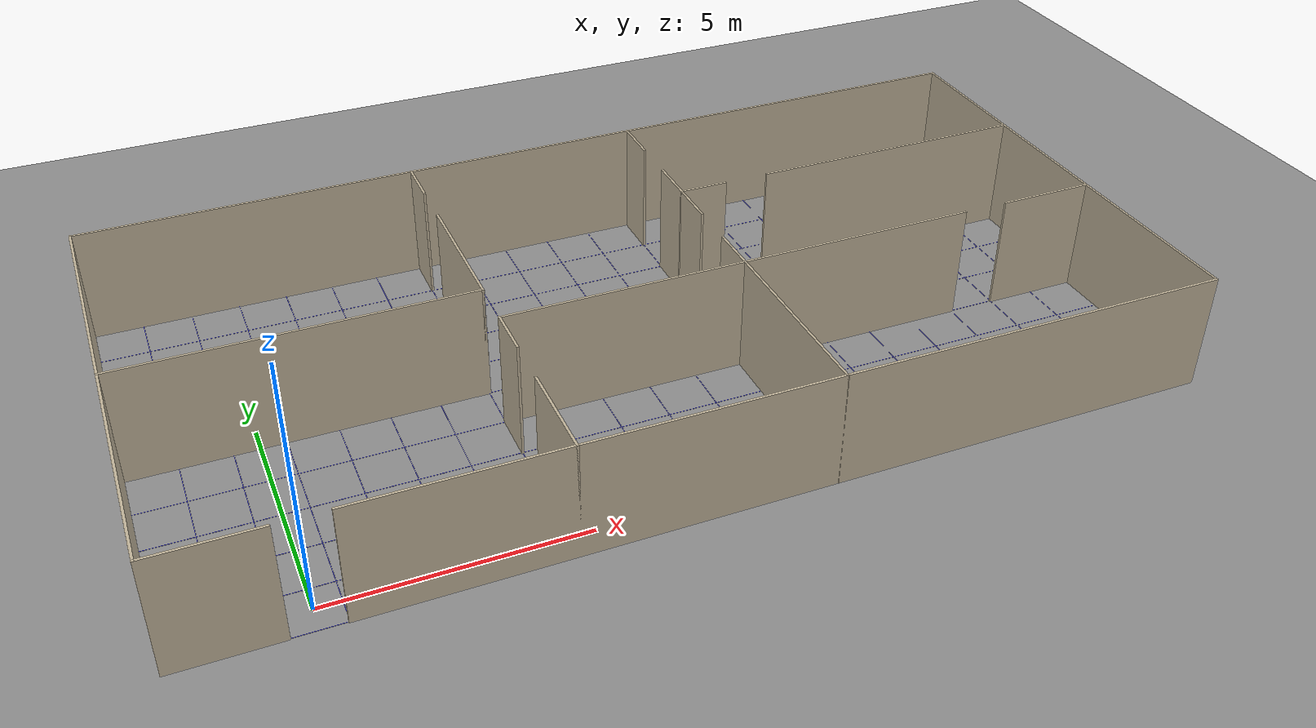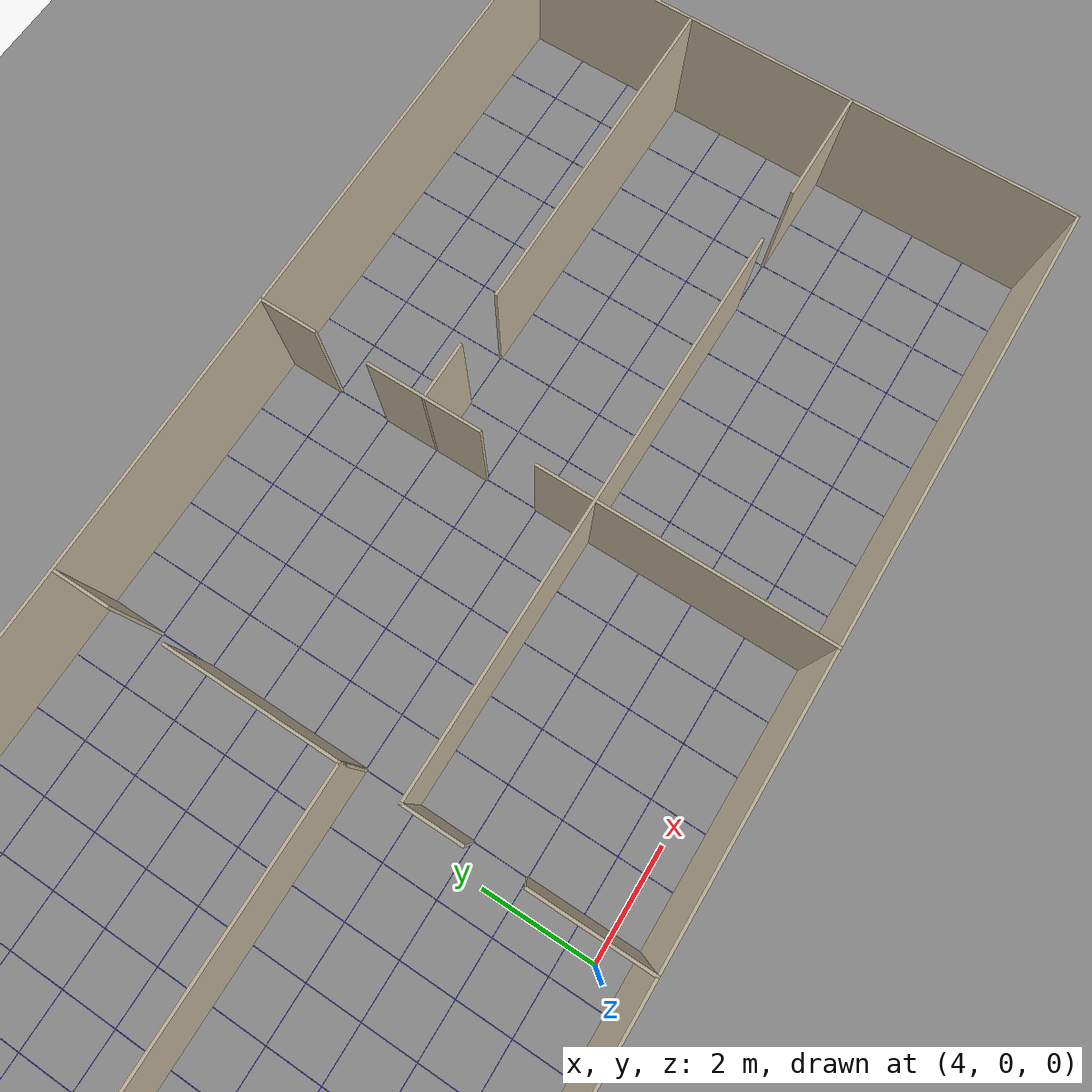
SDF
<sdf version="1.9">
 <world name="rooms_small_5">
  <physics name="1ms" type="ignore">
   <max_step_size>0.001</max_step_size>
   <real_time_factor>1.0</real_time_factor>
  </physics>
  <plugin filename="gz-sim-physics-system" name="gz::sim::systems::Physics"/>
  <plugin filename="gz-sim-sensors-system" name="gz::sim::systems::Sensors">
   <render_engine>ogre2</render_engine>
  </plugin>
  <plugin filename="gz-sim-user-commands-system" name="gz::sim::systems::UserCommands"/>
  <plugin filename="gz-sim-scene-broadcaster-system" name="gz::sim::systems::SceneBroadcaster"/>
  <plugin filename="gz-sim-imu-system" name="gz::sim::systems::Imu"/>
  <plugin filename="gz-sim-navsat-system" name="gz::sim::systems::NavSat"/>
  <scene><ambient>0.8 0.8 0.8</ambient><background>0.8 0.8 0.8</background></scene>
  <spherical_coordinates>
   <latitude_deg>-35.363262</latitude_deg>
   <longitude_deg>149.165237</longitude_deg>
   <elevation>584</elevation>
   <heading_deg>0</heading_deg>
   <surface_model>EARTH_WGS84</surface_model>
  </spherical_coordinates>
  <light type="directional" name="sun">
   <cast_shadows>false</cast_shadows>
   <pose>0 0 10 0 0 0</pose>
   <diffuse>0.9 0.9 0.9 1</diffuse>
   <direction>-0.3 0.2 -0.9</direction>
  </light>
  <model name="ground">
   <static>true</static>
   <link name="link">
    <collision name="c"><geometry><plane><normal>0 0 1</normal><size>60 60</size></plane></geometry></collision>
    <visual name="v">
     <geometry><plane><normal>0 0 1</normal><size>60 60</size></plane></geometry>
     <material><ambient>0.55 0.55 0.55 1</ambient><diffuse>0.55 0.55 0.55 1</diffuse></material>
    </visual>
   </link>
  </model>
  <model name="maze">
   <static>true</static>
   <link name="h0_0">
    <pose>7.500 9.500 1.220 0 0 0</pose>
    <collision name="c"><geometry><box><size>20.05 0.05 2.44</size></box></geometry></collision>
    <visual name="v">
     <geometry><box><size>20.05 0.05 2.44</size></box></geometry>
     <material><ambient>0.75 0.7 0.6 1</ambient><diffuse>0.75 0.7 0.6 1</diffuse></material>
    </visual>
   </link>
   <link name="h3_12">
    <pose>10.000 6.500 1.220 0 0 0</pose>
    <collision name="c"><geometry><box><size>1.05 0.05 2.44</size></box></geometry></collision>
    <visual name="v">
     <geometry><box><size>1.05 0.05 2.44</size></box></geometry>
     <material><ambient>0.75 0.7 0.6 1</ambient><diffuse>0.75 0.7 0.6 1</diffuse></material>
    </visual>
   </link>
   <link name="h3_14">
    <pose>14.500 6.500 1.220 0 0 0</pose>
    <collision name="c"><geometry><box><size>6.05 0.05 2.44</size></box></geometry></collision>
    <visual name="v">
     <geometry><box><size>6.05 0.05 2.44</size></box></geometry>
     <material><ambient>0.75 0.7 0.6 1</ambient><diffuse>0.75 0.7 0.6 1</diffuse></material>
    </visual>
   </link>
   <link name="h5_0">
    <pose>1.000 4.500 1.220 0 0 0</pose>
    <collision name="c"><geometry><box><size>7.05 0.05 2.44</size></box></geometry></collision>
    <visual name="v">
     <geometry><box><size>7.05 0.05 2.44</size></box></geometry>
     <material><ambient>0.75 0.7 0.6 1</ambient><diffuse>0.75 0.7 0.6 1</diffuse></material>
    </visual>
   </link>
   <link name="h6_7">
    <pose>9.500 3.500 1.220 0 0 0</pose>
    <collision name="c"><geometry><box><size>10.05 0.05 2.44</size></box></geometry></collision>
    <visual name="v">
     <geometry><box><size>10.05 0.05 2.44</size></box></geometry>
     <material><ambient>0.75 0.7 0.6 1</ambient><diffuse>0.75 0.7 0.6 1</diffuse></material>
    </visual>
   </link>
   <link name="h6_18">
    <pose>16.500 3.500 1.220 0 0 0</pose>
    <collision name="c"><geometry><box><size>2.05 0.05 2.44</size></box></geometry></collision>
    <visual name="v">
     <geometry><box><size>2.05 0.05 2.44</size></box></geometry>
     <material><ambient>0.75 0.7 0.6 1</ambient><diffuse>0.75 0.7 0.6 1</diffuse></material>
    </visual>
   </link>
   <link name="h10_0">
    <pose>-1.500 -0.500 1.220 0 0 0</pose>
    <collision name="c"><geometry><box><size>2.05 0.05 2.44</size></box></geometry></collision>
    <visual name="v">
     <geometry><box><size>2.05 0.05 2.44</size></box></geometry>
     <material><ambient>0.75 0.7 0.6 1</ambient><diffuse>0.75 0.7 0.6 1</diffuse></material>
    </visual>
   </link>
   <link name="h10_3">
    <pose>9.000 -0.500 1.220 0 0 0</pose>
    <collision name="c"><geometry><box><size>17.05 0.05 2.44</size></box></geometry></collision>
    <visual name="v">
     <geometry><box><size>17.05 0.05 2.44</size></box></geometry>
     <material><ambient>0.75 0.7 0.6 1</ambient><diffuse>0.75 0.7 0.6 1</diffuse></material>
    </visual>
   </link>
   <link name="v0_0">
    <pose>-2.500 4.500 1.220 0 0 0</pose>
    <collision name="c"><geometry><box><size>0.05 10.05 2.44</size></box></geometry></collision>
    <visual name="v">
     <geometry><box><size>0.05 10.05 2.44</size></box></geometry>
     <material><ambient>0.75 0.7 0.6 1</ambient><diffuse>0.75 0.7 0.6 1</diffuse></material>
    </visual>
   </link>
   <link name="v7_0">
    <pose>4.500 9.000 1.220 0 0 0</pose>
    <collision name="c"><geometry><box><size>0.05 1.05 2.44</size></box></geometry></collision>
    <visual name="v">
     <geometry><box><size>0.05 1.05 2.44</size></box></geometry>
     <material><ambient>0.75 0.7 0.6 1</ambient><diffuse>0.75 0.7 0.6 1</diffuse></material>
    </visual>
   </link>
   <link name="v7_2">
    <pose>4.500 6.000 1.220 0 0 0</pose>
    <collision name="c"><geometry><box><size>0.05 3.05 2.44</size></box></geometry></collision>
    <visual name="v">
     <geometry><box><size>0.05 3.05 2.44</size></box></geometry>
     <material><ambient>0.75 0.7 0.6 1</ambient><diffuse>0.75 0.7 0.6 1</diffuse></material>
    </visual>
   </link>
   <link name="v7_6">
    <pose>4.500 3.000 1.220 0 0 0</pose>
    <collision name="c"><geometry><box><size>0.05 1.05 2.44</size></box></geometry></collision>
    <visual name="v">
     <geometry><box><size>0.05 1.05 2.44</size></box></geometry>
     <material><ambient>0.75 0.7 0.6 1</ambient><diffuse>0.75 0.7 0.6 1</diffuse></material>
    </visual>
   </link>
   <link name="v7_8">
    <pose>4.500 0.500 1.220 0 0 0</pose>
    <collision name="c"><geometry><box><size>0.05 2.05 2.44</size></box></geometry></collision>
    <visual name="v">
     <geometry><box><size>0.05 2.05 2.44</size></box></geometry>
     <material><ambient>0.75 0.7 0.6 1</ambient><diffuse>0.75 0.7 0.6 1</diffuse></material>
    </visual>
   </link>
   <link name="v12_0">
    <pose>9.500 9.000 1.220 0 0 0</pose>
    <collision name="c"><geometry><box><size>0.05 1.05 2.44</size></box></geometry></collision>
    <visual name="v">
     <geometry><box><size>0.05 1.05 2.44</size></box></geometry>
     <material><ambient>0.75 0.7 0.6 1</ambient><diffuse>0.75 0.7 0.6 1</diffuse></material>
    </visual>
   </link>
   <link name="v12_2">
    <pose>9.500 6.500 1.220 0 0 0</pose>
    <collision name="c"><geometry><box><size>0.05 2.05 2.44</size></box></geometry></collision>
    <visual name="v">
     <geometry><box><size>0.05 2.05 2.44</size></box></geometry>
     <material><ambient>0.75 0.7 0.6 1</ambient><diffuse>0.75 0.7 0.6 1</diffuse></material>
    </visual>
   </link>
   <link name="v12_5">
    <pose>9.500 2.000 1.220 0 0 0</pose>
    <collision name="c"><geometry><box><size>0.05 5.05 2.44</size></box></geometry></collision>
    <visual name="v">
     <geometry><box><size>0.05 5.05 2.44</size></box></geometry>
     <material><ambient>0.75 0.7 0.6 1</ambient><diffuse>0.75 0.7 0.6 1</diffuse></material>
    </visual>
   </link>
   <link name="v20_0">
    <pose>17.500 4.500 1.220 0 0 0</pose>
    <collision name="c"><geometry><box><size>0.05 10.05 2.44</size></box></geometry></collision>
    <visual name="v">
     <geometry><box><size>0.05 10.05 2.44</size></box></geometry>
     <material><ambient>0.75 0.7 0.6 1</ambient><diffuse>0.75 0.7 0.6 1</diffuse></material>
    </visual>
   </link>
   <link name="gh0">
    <pose>7.500 9.500 0.001 0 0 0</pose>
    <visual name="v">
     <geometry><box><size>20.0 0.01 0.002</size></box></geometry>
     <material><ambient>0.2 0.2 0.8 1</ambient><diffuse>0.2 0.2 0.8 1</diffuse></material>
    </visual>
   </link>
   <link name="gh1">
    <pose>7.500 8.500 0.001 0 0 0</pose>
    <visual name="v">
     <geometry><box><size>20.0 0.01 0.002</size></box></geometry>
     <material><ambient>0.2 0.2 0.8 1</ambient><diffuse>0.2 0.2 0.8 1</diffuse></material>
    </visual>
   </link>
   <link name="gh2">
    <pose>7.500 7.500 0.001 0 0 0</pose>
    <visual name="v">
     <geometry><box><size>20.0 0.01 0.002</size></box></geometry>
     <material><ambient>0.2 0.2 0.8 1</ambient><diffuse>0.2 0.2 0.8 1</diffuse></material>
    </visual>
   </link>
   <link name="gh3">
    <pose>7.500 6.500 0.001 0 0 0</pose>
    <visual name="v">
     <geometry><box><size>20.0 0.01 0.002</size></box></geometry>
     <material><ambient>0.2 0.2 0.8 1</ambient><diffuse>0.2 0.2 0.8 1</diffuse></material>
    </visual>
   </link>
   <link name="gh4">
    <pose>7.500 5.500 0.001 0 0 0</pose>
    <visual name="v">
     <geometry><box><size>20.0 0.01 0.002</size></box></geometry>
     <material><ambient>0.2 0.2 0.8 1</ambient><diffuse>0.2 0.2 0.8 1</diffuse></material>
    </visual>
   </link>
   <link name="gh5">
    <pose>7.500 4.500 0.001 0 0 0</pose>
    <visual name="v">
     <geometry><box><size>20.0 0.01 0.002</size></box></geometry>
     <material><ambient>0.2 0.2 0.8 1</ambient><diffuse>0.2 0.2 0.8 1</diffuse></material>
    </visual>
   </link>
   <link name="gh6">
    <pose>7.500 3.500 0.001 0 0 0</pose>
    <visual name="v">
     <geometry><box><size>20.0 0.01 0.002</size></box></geometry>
     <material><ambient>0.2 0.2 0.8 1</ambient><diffuse>0.2 0.2 0.8 1</diffuse></material>
    </visual>
   </link>
   <link name="gh7">
    <pose>7.500 2.500 0.001 0 0 0</pose>
    <visual name="v">
     <geometry><box><size>20.0 0.01 0.002</size></box></geometry>
     <material><ambient>0.2 0.2 0.8 1</ambient><diffuse>0.2 0.2 0.8 1</diffuse></material>
    </visual>
   </link>
   <link name="gh8">
    <pose>7.500 1.500 0.001 0 0 0</pose>
    <visual name="v">
     <geometry><box><size>20.0 0.01 0.002</size></box></geometry>
     <material><ambient>0.2 0.2 0.8 1</ambient><diffuse>0.2 0.2 0.8 1</diffuse></material>
    </visual>
   </link>
   <link name="gh9">
    <pose>7.500 0.500 0.001 0 0 0</pose>
    <visual name="v">
     <geometry><box><size>20.0 0.01 0.002</size></box></geometry>
     <material><ambient>0.2 0.2 0.8 1</ambient><diffuse>0.2 0.2 0.8 1</diffuse></material>
    </visual>
   </link>
   <link name="gh10">
    <pose>7.500 -0.500 0.001 0 0 0</pose>
    <visual name="v">
     <geometry><box><size>20.0 0.01 0.002</size></box></geometry>
     <material><ambient>0.2 0.2 0.8 1</ambient><diffuse>0.2 0.2 0.8 1</diffuse></material>
    </visual>
   </link>
   <link name="gv0">
    <pose>-2.500 4.500 0.001 0 0 0</pose>
    <visual name="v">
     <geometry><box><size>0.01 10.0 0.002</size></box></geometry>
     <material><ambient>0.2 0.2 0.8 1</ambient><diffuse>0.2 0.2 0.8 1</diffuse></material>
    </visual>
   </link>
   <link name="gv1">
    <pose>-1.500 4.500 0.001 0 0 0</pose>
    <visual name="v">
     <geometry><box><size>0.01 10.0 0.002</size></box></geometry>
     <material><ambient>0.2 0.2 0.8 1</ambient><diffuse>0.2 0.2 0.8 1</diffuse></material>
    </visual>
   </link>
   <link name="gv2">
    <pose>-0.500 4.500 0.001 0 0 0</pose>
    <visual name="v">
     <geometry><box><size>0.01 10.0 0.002</size></box></geometry>
     <material><ambient>0.2 0.2 0.8 1</ambient><diffuse>0.2 0.2 0.8 1</diffuse></material>
    </visual>
   </link>
   <link name="gv3">
    <pose>0.500 4.500 0.001 0 0 0</pose>
    <visual name="v">
     <geometry><box><size>0.01 10.0 0.002</size></box></geometry>
     <material><ambient>0.2 0.2 0.8 1</ambient><diffuse>0.2 0.2 0.8 1</diffuse></material>
    </visual>
   </link>
   <link name="gv4">
    <pose>1.500 4.500 0.001 0 0 0</pose>
    <visual name="v">
     <geometry><box><size>0.01 10.0 0.002</size></box></geometry>
     <material><ambient>0.2 0.2 0.8 1</ambient><diffuse>0.2 0.2 0.8 1</diffuse></material>
    </visual>
   </link>
   <link name="gv5">
    <pose>2.500 4.500 0.001 0 0 0</pose>
    <visual name="v">
     <geometry><box><size>0.01 10.0 0.002</size></box></geometry>
     <material><ambient>0.2 0.2 0.8 1</ambient><diffuse>0.2 0.2 0.8 1</diffuse></material>
    </visual>
   </link>
   <link name="gv6">
    <pose>3.500 4.500 0.001 0 0 0</pose>
    <visual name="v">
     <geometry><box><size>0.01 10.0 0.002</size></box></geometry>
     <material><ambient>0.2 0.2 0.8 1</ambient><diffuse>0.2 0.2 0.8 1</diffuse></material>
    </visual>
   </link>
   <link name="gv7">
    <pose>4.500 4.500 0.001 0 0 0</pose>
    <visual name="v">
     <geometry><box><size>0.01 10.0 0.002</size></box></geometry>
     <material><ambient>0.2 0.2 0.8 1</ambient><diffuse>0.2 0.2 0.8 1</diffuse></material>
    </visual>
   </link>
   <link name="gv8">
    <pose>5.500 4.500 0.001 0 0 0</pose>
    <visual name="v">
     <geometry><box><size>0.01 10.0 0.002</size></box></geometry>
     <material><ambient>0.2 0.2 0.8 1</ambient><diffuse>0.2 0.2 0.8 1</diffuse></material>
    </visual>
   </link>
   <link name="gv9">
    <pose>6.500 4.500 0.001 0 0 0</pose>
    <visual name="v">
     <geometry><box><size>0.01 10.0 0.002</size></box></geometry>
     <material><ambient>0.2 0.2 0.8 1</ambient><diffuse>0.2 0.2 0.8 1</diffuse></material>
    </visual>
   </link>
   <link name="gv10">
    <pose>7.500 4.500 0.001 0 0 0</pose>
    <visual name="v">
     <geometry><box><size>0.01 10.0 0.002</size></box></geometry>
     <material><ambient>0.2 0.2 0.8 1</ambient><diffuse>0.2 0.2 0.8 1</diffuse></material>
    </visual>
   </link>
   <link name="gv11">
    <pose>8.500 4.500 0.001 0 0 0</pose>
    <visual name="v">
     <geometry><box><size>0.01 10.0 0.002</size></box></geometry>
     <material><ambient>0.2 0.2 0.8 1</ambient><diffuse>0.2 0.2 0.8 1</diffuse></material>
    </visual>
   </link>
   <link name="gv12">
    <pose>9.500 4.500 0.001 0 0 0</pose>
    <visual name="v">
     <geometry><box><size>0.01 10.0 0.002</size></box></geometry>
     <material><ambient>0.2 0.2 0.8 1</ambient><diffuse>0.2 0.2 0.8 1</diffuse></material>
    </visual>
   </link>
   <link name="gv13">
    <pose>10.500 4.500 0.001 0 0 0</pose>
    <visual name="v">
     <geometry><box><size>0.01 10.0 0.002</size></box></geometry>
     <material><ambient>0.2 0.2 0.8 1</ambient><diffuse>0.2 0.2 0.8 1</diffuse></material>
    </visual>
   </link>
   <link name="gv14">
    <pose>11.500 4.500 0.001 0 0 0</pose>
    <visual name="v">
     <geometry><box><size>0.01 10.0 0.002</size></box></geometry>
     <material><ambient>0.2 0.2 0.8 1</ambient><diffuse>0.2 0.2 0.8 1</diffuse></material>
    </visual>
   </link>
   <link name="gv15">
    <pose>12.500 4.500 0.001 0 0 0</pose>
    <visual name="v">
     <geometry><box><size>0.01 10.0 0.002</size></box></geometry>
     <material><ambient>0.2 0.2 0.8 1</ambient><diffuse>0.2 0.2 0.8 1</diffuse></material>
    </visual>
   </link>
   <link name="gv16">
    <pose>13.500 4.500 0.001 0 0 0</pose>
    <visual name="v">
     <geometry><box><size>0.01 10.0 0.002</size></box></geometry>
     <material><ambient>0.2 0.2 0.8 1</ambient><diffuse>0.2 0.2 0.8 1</diffuse></material>
    </visual>
   </link>
   <link name="gv17">
    <pose>14.500 4.500 0.001 0 0 0</pose>
    <visual name="v">
     <geometry><box><size>0.01 10.0 0.002</size></box></geometry>
     <material><ambient>0.2 0.2 0.8 1</ambient><diffuse>0.2 0.2 0.8 1</diffuse></material>
    </visual>
   </link>
   <link name="gv18">
    <pose>15.500 4.500 0.001 0 0 0</pose>
    <visual name="v">
     <geometry><box><size>0.01 10.0 0.002</size></box></geometry>
     <material><ambient>0.2 0.2 0.8 1</ambient><diffuse>0.2 0.2 0.8 1</diffuse></material>
    </visual>
   </link>
   <link name="gv19">
    <pose>16.500 4.500 0.001 0 0 0</pose>
    <visual name="v">
     <geometry><box><size>0.01 10.0 0.002</size></box></geometry>
     <material><ambient>0.2 0.2 0.8 1</ambient><diffuse>0.2 0.2 0.8 1</diffuse></material>
    </visual>
   </link>
   <link name="gv20">
    <pose>17.500 4.500 0.001 0 0 0</pose>
    <visual name="v">
     <geometry><box><size>0.01 10.0 0.002</size></box></geometry>
     <material><ambient>0.2 0.2 0.8 1</ambient><diffuse>0.2 0.2 0.8 1</diffuse></material>
    </visual>
   </link>
  </model>
 </world>
</sdf>
